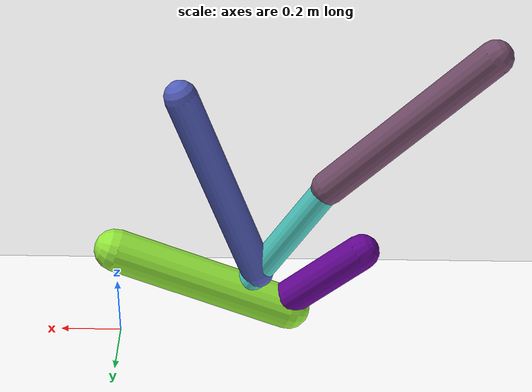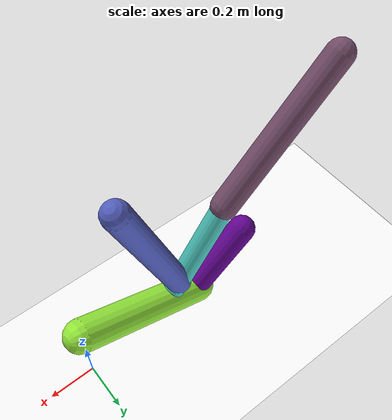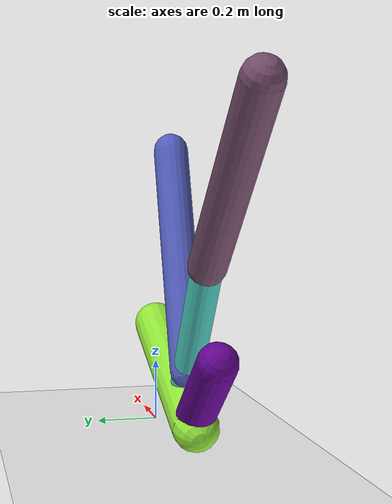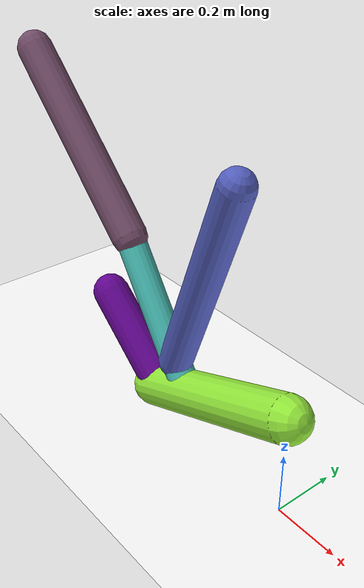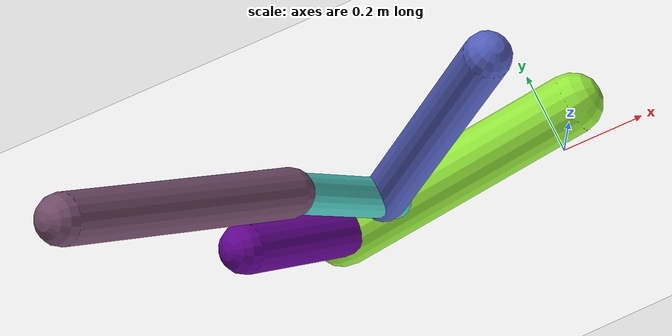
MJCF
<mujoco model="morphology">
  <option timestep="0.01"/>
  <default>
    <default class="/"/>
    <default class="0/"/>
    <default class="0/1/"/>
    <default class="0/2/"/>
    <default class="0/2/3/"/>
    <default class="0/2/4/"/>
  </default>
  <asset>
    <texture name="texplane" type="2d" builtin="checker" rgb1="0.10000000000000001 0.20000000000000001 0.29999999999999999" rgb2="0.20000000000000001 0.29999999999999999 0.40000000000000002" width="300" height="300"/>
    <material name="MatPlane" class="/" texture="texplane" texrepeat="20 20" specular="1" shininess="1" reflectance="0.5"/>
  </asset>
  <worldbody>
    <light name="//unnamed_light_0" class="/" directional="true" pos="0 0 1.5" dir="0 0 -1.3" cutoff="100" exponent="1" diffuse="1 1 1" specular="0.10000000000000001 0.10000000000000001 0.10000000000000001"/>
    <geom name="ground" class="/" type="plane" size="15 15 0.5" material="MatPlane" rgba="1 1 1 1"/>
    <site name="body" class="/" size="9.9999999999999995e-07 9.9999999999999995e-07 9.9999999999999995e-07" pos="0 0 0.32994565963745115"/>
    <body pos="0 0 0.32994565963745115" name="0/">
      <joint name="0/rootx/" class="/" type="slide" axis="1 0 0" limited="false" stiffness="0" armature="0" damping="0"/>
      <joint name="0/rootz/" class="/" type="slide" axis="0 0 1" limited="false" stiffness="0" armature="0" damping="0"/>
      <joint name="0/rooty/" class="/" type="hinge" axis="0 1 0" limited="false" stiffness="0" armature="0" damping="0"/>
      <geom name="0/geom" class="0/" type="capsule" contype="1" conaffinity="1" condim="3" size="0.069858517529585717" rgba="0.59450574995024963 0.92857647877226934 0.23479269031607652 1" friction="0.59999999999999998 0.10000000000000001 0.10000000000000001" fromto="0 0 0 -0.56452371193149076 0 -0.22994565946926282"/>
      <site name="0/end0" class="0/" size="0.0050000000000000001" pos="-0.56452371193149076 0 -0.22994565946926282"/>
      <site name="0/attach1" class="0/" size="9.9999999999999995e-07 9.9999999999999995e-07 9.9999999999999995e-07" pos="-0.5306695276825778 0 -0.21615594159138043"/>
      <body pos="-0.5306695276825778 0 -0.21615594159138043" name="0/1/">
        <joint name="0/1/joint/" class="0/" type="hinge" axis="0 1 0" limited="true" range="-48.343765263504721 48.343765263504721"/>
        <geom name="0/1/geom" class="0/1/" type="capsule" contype="1" conaffinity="1" condim="3" size="0.058670374928488651" rgba="0.39109400504141778 0.018531291112040549 0.57791477922308299 1" friction="0.59999999999999998 0.10000000000000001 0.10000000000000001" fromto="0 0 0 -0.26990344218061396 0 0.21996326008416978"/>
        <site name="0/1/end1" class="0/1/" size="0.0050000000000000001" pos="-0.26990344218061396 0 0.21996326008416978"/>
      </body>
      <site name="0/attach2" class="0/" size="9.9999999999999995e-07 9.9999999999999995e-07 9.9999999999999995e-07" pos="-0.40569294905846337 0 -0.16524962679441804"/>
      <body pos="-0.40569294905846337 0 -0.16524962679441804" name="0/2/">
        <joint name="0/2/joint/" class="0/" type="hinge" axis="0 1 0" limited="true" range="-46.543541652266512 46.543541652266512"/>
        <geom name="0/2/geom" class="0/2/" type="capsule" contype="1" conaffinity="1" condim="3" size="0.045543943962711414" rgba="0.30348299235849152 0.78998344851022995 0.75250408324040863 1" friction="0.59999999999999998 0.10000000000000001 0.10000000000000001" fromto="0 0 0 -0.2946327665752243 0 0.43627792722750769"/>
        <site name="0/2/end2" class="0/2/" size="0.0050000000000000001" pos="-0.2946327665752243 0 0.43627792722750769"/>
        <site name="0/2/attach3" class="0/2/" size="9.9999999999999995e-07 9.9999999999999995e-07 9.9999999999999995e-07" pos="-0.28182404003704847 0 0.417311385489956"/>
        <body pos="-0.28182404003704847 0 0.417311385489956" name="0/2/3/">
          <joint name="0/2/3/joint/" class="0/2/" type="hinge" axis="0 1 0" limited="true" range="-42.215695312989283 42.215695312989283"/>
          <geom name="0/2/3/geom" class="0/2/3/" type="capsule" contype="1" conaffinity="1" condim="3" size="0.055957641430196617" rgba="0.4557740700334485 0.30286826479304874 0.41741406934025127 1" friction="0.59999999999999998 0.10000000000000001 0.10000000000000001" fromto="0 0 0 -0.48783967490403668 0 0.47116866636013111"/>
          <site name="0/2/3/end3" class="0/2/3/" size="0.0050000000000000001" pos="-0.48783967490403668 0 0.47116866636013111"/>
        </body>
        <site name="0/2/attach4" class="0/2/" size="9.9999999999999995e-07 9.9999999999999995e-07 9.9999999999999995e-07" pos="-0.057410825761937512 0 0.085011169514449744"/>
        <body pos="-0.057410825761937512 0 0.085011169514449744" name="0/2/4/">
          <joint name="0/2/4/joint/" class="0/2/" type="hinge" axis="0 1 0" limited="true" range="-42.853028899753532 42.853028899753532"/>
          <geom name="0/2/4/geom" class="0/2/4/" type="capsule" contype="1" conaffinity="1" condim="3" size="0.053272835419325898" rgba="0.33121985546147492 0.37808687828052956 0.75623848940410998 1" friction="0.59999999999999998 0.10000000000000001 0.10000000000000001" fromto="0 0 0 0.23199420648955993 0 0.65760226156232626"/>
          <site name="0/2/4/end4" class="0/2/4/" size="0.0050000000000000001" pos="0.23199420648955993 0 0.65760226156232626"/>
        </body>
      </body>
      <camera name="0/side" class="0/" mode="trackcom" pos="0.40000000000000002 -4 0.20000000000000001" quat="0.70699999999999996 0.70699999999999996 0 0"/>
    </body>
  </worldbody>
  <actuator>
    <motor name="0/1/motor" class="0/1/" ctrllimited="true" ctrlrange="-1 1" gear="66" joint="0/1/joint/"/>
    <motor name="0/2/motor" class="0/2/" ctrllimited="true" ctrlrange="-1 1" gear="84" joint="0/2/joint/"/>
    <motor name="0/2/3/motor" class="0/2/3/" ctrllimited="true" ctrlrange="-1 1" gear="76" joint="0/2/3/joint/"/>
    <motor name="0/2/4/motor" class="0/2/4/" ctrllimited="true" ctrlrange="-1 1" gear="86" joint="0/2/4/joint/"/>
  </actuator>
  <sensor>
    <subtreelinvel name="velocity" body="0/"/>
  </sensor>
</mujoco>
